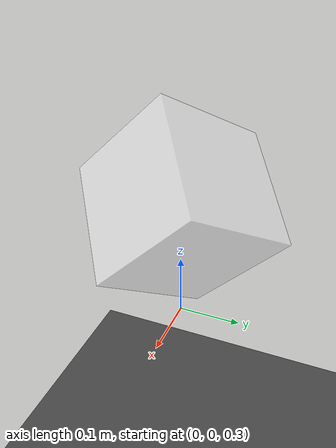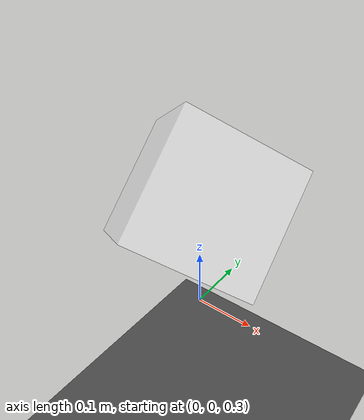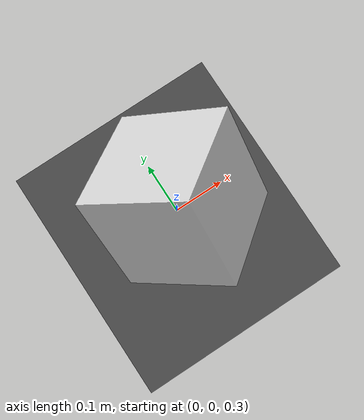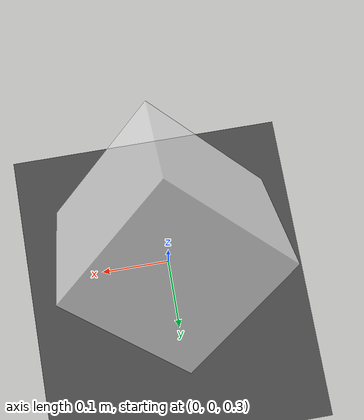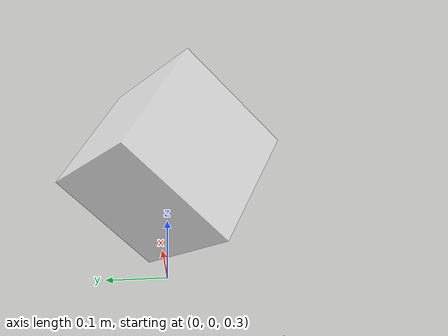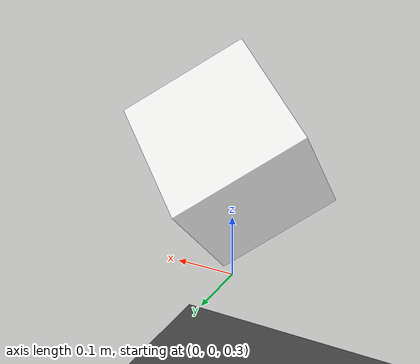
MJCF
<mujoco>
  <visual>
    <rgba haze=".3 .3 .3 1"/>
  </visual>
  <asset>
    <texture type="skybox" builtin="gradient" rgb1="0.6 0.6 0.6" rgb2="0 0 0" width="512" height="512"/>
    <texture name="texplane" type="2d" builtin="checker" rgb1=".25 .25 .25" rgb2=".3 .3 .3" width="512" height="512" mark="cross" markrgb=".8 .8 .8"/>
    <material name="matplane" reflectance="0.3" texture="texplane" texrepeat="1 1" texuniform="true"/>
  </asset>
  <worldbody>
    <geom name="floor" pos="0 0 0" size="0 0 1" type="plane" material="matplane"/>
    <light directional="true" diffuse=".8 .8 .8" specular=".2 .2 .2" pos="0 0 5" dir="0 0 -1"/>
    <body pos="0 0 .5" euler="45 45 0">
      <geom type="box" size=".1 .1 .1" rgba="1 1 1 .8" />
    </body>
  </worldbody>
</mujoco>
